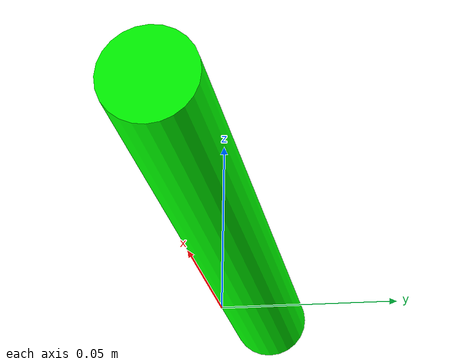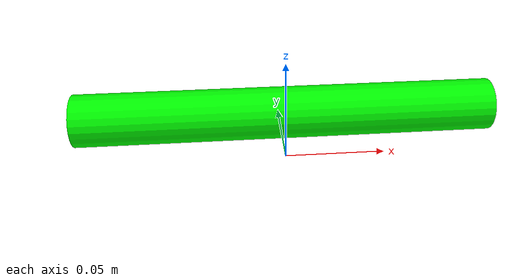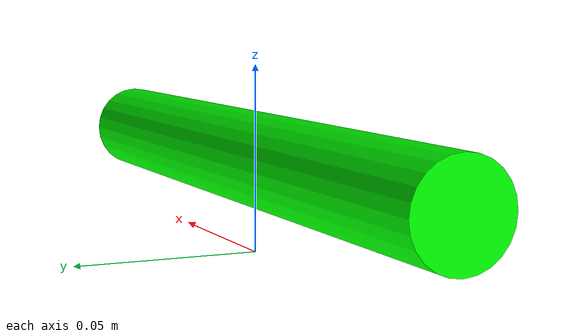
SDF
<?xml version="1.0" ?>
<sdf version="1.5">
  <model name="cucumber">
    <link name="link">
      <pose>0 0 0.025 0 1.5708 0</pose>
      <inertial>
        <mass>0.05</mass>
        <inertia>
          <!-- Inertia for a solid cylinder -->
          <ixx>3.13e-5</ixx>
          <ixy>0</ixy>
          <ixz>0</ixz>
          <iyy>3.13e-5</iyy>
          <iyz>0</iyz>
          <izz>6.25e-5</izz>
        </inertia>
      </inertial>

      <collision name="collision">
        <geometry>
          <cylinder>
            <radius>0.0125</radius> <!-- Half of the 25 mm diameter -->
            <length>0.2</length> <!-- 500 mm length -->
          </cylinder>
        </geometry>
        <surface>
          <contact>
            <ode>
              <kp>1000</kp>
              <kd>500</kd>
              <max_vel>100.0</max_vel>
              <min_depth>0.001</min_depth>
            </ode>
          </contact>
          <friction>
            <torsional>
              <coefficient>2.0</coefficient>
              <use_patch_radius>0</use_patch_radius>
              <surface_radius>0.01</surface_radius>
            </torsional>
          </friction>
        </surface>
      </collision>

      <visual name="visual">
        <geometry>
          <cylinder>
            <radius>0.0125</radius> <!-- Half of the 25 mm diameter -->
            <length>0.2</length> <!-- 100 mm length -->
          </cylinder>
        </geometry>
        <material>
          <ambient>0 1 0 1</ambient> <!-- Green color for cucumber -->
          <diffuse>0 1 0 1</diffuse>
          <specular>0.5 0.5 0.5 1</specular>
          <emissive>0 0 0 1</emissive>
        </material>
      </visual>

      <!-- approximate rolling friction -->
      <velocity_decay>
        <linear>0.1</linear>
        <angular>0.25</angular>
      </velocity_decay>
    </link>
  </model>
</sdf>
